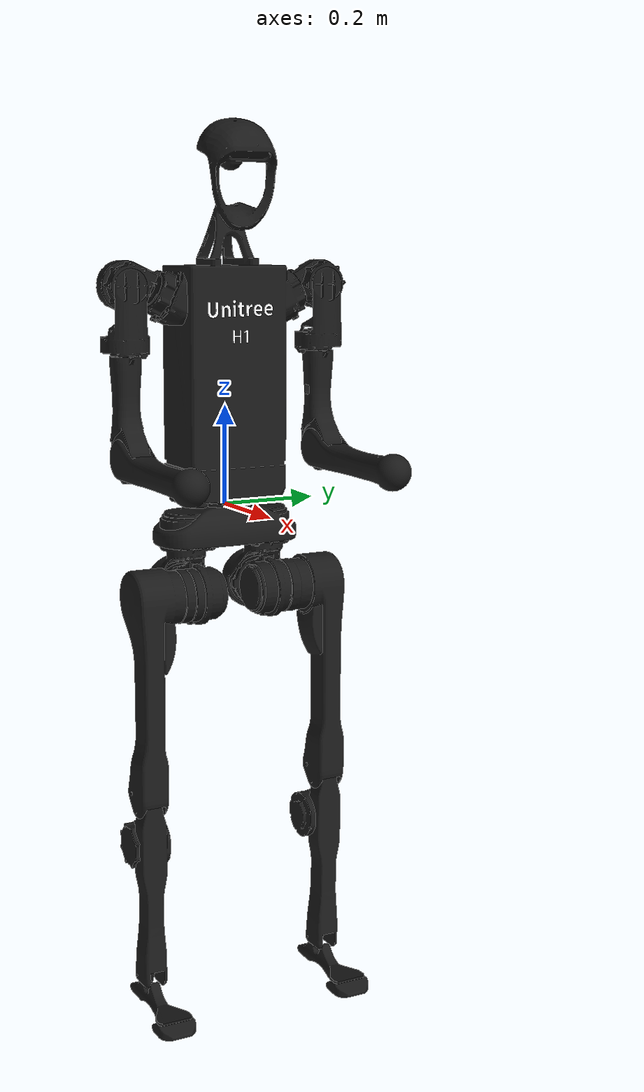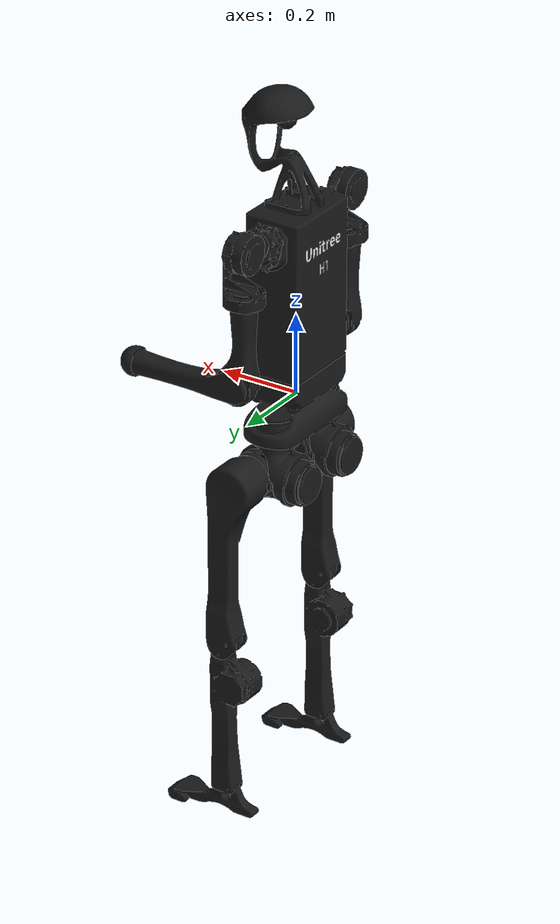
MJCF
<?xml version="1.0" ?>
<mujoco model="h1">
	<compiler meshdir="h1/meshes" texturedir="h1/textures" angle="radian" autolimits="true" balanceinertia="true" boundmass="0.000001" boundinertia="0.000001"/>
	<default>
		<default class="visual">
			<geom contype="0" conaffinity="0"/>
		</default>
		<default class="collision">
			<geom rgba="1.0 0.0 0.0 0.0"/>
		</default>
	</default>
	<asset>
		<mesh name="pelvis" file="stl/pelvis.stl" scale="1.0 1.0 1.0"/>
		<mesh name="left_hip_yaw_link" file="stl/left_hip_yaw_link.stl" scale="1.0 1.0 1.0"/>
		<mesh name="left_hip_roll_link" file="stl/left_hip_roll_link.stl" scale="1.0 1.0 1.0"/>
		<mesh name="left_hip_pitch_link" file="stl/left_hip_pitch_link.stl" scale="1.0 1.0 1.0"/>
		<mesh name="left_knee_link" file="stl/left_knee_link.stl" scale="1.0 1.0 1.0"/>
		<mesh name="left_ankle_link" file="stl/left_ankle_link.stl" scale="1.0 1.0 1.0"/>
		<mesh name="right_hip_yaw_link" file="stl/right_hip_yaw_link.stl" scale="1.0 1.0 1.0"/>
		<mesh name="right_hip_roll_link" file="stl/right_hip_roll_link.stl" scale="1.0 1.0 1.0"/>
		<mesh name="right_hip_pitch_link" file="stl/right_hip_pitch_link.stl" scale="1.0 1.0 1.0"/>
		<mesh name="right_knee_link" file="stl/right_knee_link.stl" scale="1.0 1.0 1.0"/>
		<mesh name="right_ankle_link" file="stl/right_ankle_link.stl" scale="1.0 1.0 1.0"/>
		<mesh name="torso_link" file="stl/torso_link.stl" scale="1.0 1.0 1.0"/>
		<mesh name="logo_link" file="stl/logo_link.stl" scale="1.0 1.0 1.0"/>
		<mesh name="left_shoulder_pitch_link" file="stl/left_shoulder_pitch_link.stl" scale="1.0 1.0 1.0"/>
		<mesh name="left_shoulder_roll_link" file="stl/left_shoulder_roll_link.stl" scale="1.0 1.0 1.0"/>
		<mesh name="left_shoulder_yaw_link" file="stl/left_shoulder_yaw_link.stl" scale="1.0 1.0 1.0"/>
		<mesh name="left_elbow_link" file="stl/left_elbow_link.stl" scale="1.0 1.0 1.0"/>
		<mesh name="right_shoulder_pitch_link" file="stl/right_shoulder_pitch_link.stl" scale="1.0 1.0 1.0"/>
		<mesh name="right_shoulder_roll_link" file="stl/right_shoulder_roll_link.stl" scale="1.0 1.0 1.0"/>
		<mesh name="right_shoulder_yaw_link" file="stl/right_shoulder_yaw_link.stl" scale="1.0 1.0 1.0"/>
		<mesh name="right_elbow_link" file="stl/right_elbow_link.stl" scale="1.0 1.0 1.0"/>
		<material name="black" rgba="0.10000000149011612 0.10000000149011612 0.10000000149011612 1.0" emission="0.0" specular="0.5"/>
		<material name="white" rgba="1.0 1.0 1.0 1.0" emission="0.0" specular="0.5"/>
	</asset>
	<worldbody>
		<body name="h1" pos="0.0 0.0 0.0" quat="1.0 0.0 0.0 0.0">
			<body name="pelvis" pos="0.0 0.0 0.0" quat="1.0 0.0 0.0 0.0">
				<geom name="Geom_0" type="mesh" pos="1.4959405234549195e-06 2.051345518339076e-06 -0.04126008599996567" quat="0.5000481009483337 0.5000556111335754 -0.49994853138923645 0.499947726726532" mesh="pelvis" material="black" class="visual"/>
				<geom name="Geom_1" type="mesh" pos="1.4959405234549195e-06 2.051345518339076e-06 -0.04126008599996567" quat="0.5000481009483337 0.5000556111335754 -0.49994853138923645 0.499947726726532" mesh="pelvis" class="collision"/>
				<body name="right_hip_yaw_link" pos="0.0 -0.08749999850988388 -0.17419999837875366" quat="1.0 0.0 0.0 0.0">
					<inertial mass="2.24399995803833" pos="-0.049229998141527176 -9.999999747378752e-05 0.007199999876320362" quat="0.6416670083999634 0.2332870066165924 0.2191929966211319 0.6969900131225586" diaginertia="0.0030449400655925274 0.002968850079923868 0.0018920099828392267"/>
					<geom name="Geom_12" type="mesh" pos="-0.03807106986641884 3.4278398288734024e-06 0.033565454185009" quat="0.9465280175209045 6.459824362536892e-05 0.322621613740921 6.646179099334404e-05" mesh="right_hip_yaw_link" material="black" class="visual"/>
					<geom name="Geom_13" type="cylinder" pos="-0.06700000166893005 0.0 0.0" quat="0.7071232795715332 0.0 0.7070902585983276 0.0" size="0.05999999865889549 0.03500000014901161 0.0" class="collision"/>
					<joint name="right_hip_yaw" type="hinge" pos="0.0 0.0 0.0" range="-0.4300000071525574 0.4300000071525574" axis="0.0 0.0 1.0"/>
					<body name="right_hip_roll_link" pos="0.03946800157427788 0.0 0.0" quat="1.0 0.0 0.0 0.0">
						<inertial mass="2.2320001125335693" pos="-0.005799999926239252 0.0031900000758469105 -9.000000136438757e-05" quat="-0.0438242144882679 0.7072102427482605 0.07290752232074738 0.7018672227859497" diaginertia="0.002432639943435788 0.0022532499860972166 0.0020549199543893337"/>
						<geom name="Geom_14" type="mesh" pos="-0.020227110013365746 0.00920272059738636 1.7128593299275963e-06" quat="0.4344494640827179 0.434529185295105 0.5577123165130615 0.5580277442932129" mesh="right_hip_roll_link" material="black" class="visual"/>
						<geom name="Geom_15" type="mesh" pos="-0.020227110013365746 0.00920272059738636 1.7128593299275963e-06" quat="0.4344494640827179 0.434529185295105 0.5577123165130615 0.5580277442932129" mesh="right_hip_roll_link" class="collision"/>
						<joint name="right_hip_roll" type="hinge" pos="0.0 0.0 0.0" range="-0.4300000071525574 0.4300000071525574" axis="1.0 0.0 0.0"/>
						<body name="right_hip_pitch_link" pos="0.0 -0.11535999923944473 0.0" quat="1.0 0.0 0.0 0.0">
							<inertial mass="4.1519999504089355" pos="0.007459999993443489 0.02346000075340271 -0.0819299966096878" quat="0.9798283576965332 -0.05135221779346466 -0.01698540523648262 0.1923820674419403" diaginertia="0.08295030146837234 0.08214569836854935 0.005109089892357588"/>
							<geom name="Geom_16" type="mesh" pos="0.012151695787906647 0.01963897980749607 -0.13054850697517395" quat="0.9817856550216675 -0.052278731018304825 -0.020554043352603912 0.18149760365486145" mesh="right_hip_pitch_link" material="black" class="visual"/>
							<geom name="Geom_17" type="mesh" pos="0.012151695787906647 0.01963897980749607 -0.13054850697517395" quat="0.9817856550216675 -0.052278731018304825 -0.020554043352603912 0.18149760365486145" mesh="right_hip_pitch_link" class="collision"/>
							<joint name="right_hip_pitch" type="hinge" pos="0.0 0.0 0.0" range="-1.5700000524520874 1.5700000524520874" axis="0.0 1.0 0.0"/>
							<body name="right_knee_link" pos="0.0 0.0 -0.4000000059604645" quat="1.0 0.0 0.0 0.0">
								<inertial mass="1.7209999561309814" pos="-0.0013599999947473407 0.005119999870657921 -0.13840000331401825" quat="0.7778522372245789 -0.04162771254777908 -0.03422700986266136 0.6261321902275085" diaginertia="0.012523699551820755 0.012310399673879147 0.0019428000086918473"/>
								<geom name="Geom_18" type="mesh" pos="0.0076714251190423965 0.0017608820926398039 -0.16004091501235962" quat="0.7392074465751648 -0.019502710551023483 -0.0162811279296875 0.6729984879493713" mesh="right_knee_link" material="black" class="visual"/>
								<geom name="Geom_19" type="mesh" pos="0.0076714251190423965 0.0017608820926398039 -0.16004091501235962" quat="0.7392074465751648 -0.019502710551023483 -0.0162811279296875 0.6729984879493713" mesh="right_knee_link" class="collision"/>
								<joint name="right_knee" type="hinge" pos="0.0 0.0 0.0" range="-0.25999999046325684 2.049999952316284" axis="0.0 1.0 0.0"/>
								<body name="right_ankle_link" pos="0.0 0.0 -0.4000000059604645" quat="1.0 0.0 0.0 0.0">
									<inertial mass="0.44600000977516174" pos="0.06722000241279602 -0.0001500000071246177 -0.04496999830007553" quat="0.4329717755317688 0.5657817125320435 0.5031967163085938 0.48910075426101685" diaginertia="0.0022084799129515886 0.002189609920606017 0.00021420199482236058"/>
									<geom name="Geom_20" type="mesh" pos="0.07149466872215271 3.012107754329918e-07 -0.047084417194128036" quat="-3.448139614192769e-05 0.7501697540283203 -3.771793490159325e-05 0.6612452864646912" mesh="right_ankle_link" material="black" class="visual"/>
									<geom name="Geom_21" type="mesh" pos="0.07149466872215271 3.012107754329918e-07 -0.047084417194128036" quat="-3.448139614192769e-05 0.7501697540283203 -3.771793490159325e-05 0.6612452864646912" mesh="right_ankle_link" class="collision"/>
									<joint name="right_ankle" type="hinge" pos="0.0 0.0 0.0" range="-0.8700000047683716 0.5199999809265137" axis="0.0 1.0 0.0"/>
								</body>
							</body>
						</body>
					</body>
				</body>
				<body name="torso_link" pos="0.0 0.0 0.0" quat="1.0 0.0 0.0 0.0">
					<inertial mass="17.788999557495117" pos="0.0004889999981969595 0.0027970001101493835 0.20484000444412231" quat="0.9999890923500061 -0.0013080800417810678 -0.002822890179231763 -0.0034910503309220076" diaginertia="0.48731499910354614 0.4096280038356781 0.12783700227737427"/>
					<geom name="Geom_22" type="mesh" pos="0.015564000234007835 2.529602170397993e-06 0.38950976729393005" quat="0.9991444945335388 9.059405670086562e-08 0.04135465249419212 0.00018027501937467605" mesh="torso_link" material="black" class="visual"/>
					<geom name="Geom_23" type="mesh" pos="0.015564000234007835 2.529602170397993e-06 0.38950976729393005" quat="0.9991444945335388 9.059405670086562e-08 0.04135465249419212 0.00018027501937467605" mesh="torso_link" class="collision"/>
					<geom name="Geom_24" type="mesh" pos="-1.66760273714317e-05 0.0012330973986536264 0.3837130665779114" quat="0.024031583219766617 0.7058780193328857 -0.03540341183543205 0.7070398330688477" mesh="logo_link" material="white" class="visual"/>
					<joint name="torso" type="hinge" pos="0.0 0.0 0.0" range="-2.3499999046325684 2.3499999046325684" axis="0.0 0.0 1.0"/>
					<body name="right_shoulder_pitch_link" pos="0.005499999970197678 -0.155349999666214 0.4299899935722351" quat="0.9762963652610779 -0.21643806993961334 0.0 0.0">
						<inertial mass="1.0329999923706055" pos="0.005044999998062849 -0.05365699902176857 -0.01571499928832054" quat="0.5792360305786133 0.8148580193519592 0.009364880621433258 0.020107200369238853" diaginertia="0.0012993599520996213 0.0009871129877865314 0.0008581979782320559"/>
						<geom name="Geom_33" type="mesh" pos="-0.0056705777533352375 -0.049511924386024475 -0.01447086501866579" quat="0.5847590565681458 0.8103508949279785 -0.025327419862151146 -0.02732761763036251" mesh="right_shoulder_pitch_link" material="black" class="visual"/>
						<geom name="Geom_34" type="mesh" pos="-0.0056705777533352375 -0.049511924386024475 -0.01447086501866579" quat="0.5847590565681458 0.8103508949279785 -0.025327419862151146 -0.02732761763036251" mesh="right_shoulder_pitch_link" class="collision"/>
						<joint name="right_shoulder_pitch" type="hinge" pos="0.0 0.0 0.0" range="-2.869999885559082 2.869999885559082" axis="0.0 1.0 0.0"/>
						<body name="right_shoulder_roll_link" pos="-0.005499999970197678 -0.05649999901652336 -0.016499999910593033" quat="0.9762963652610779 0.21643806993961334 0.0 0.0">
							<inertial mass="0.7929999828338623" pos="0.000678999989759177 -0.0011500000255182385 -0.0940760001540184" quat="0.6763839721679688 0.07666559517383575 0.009171789512038231 0.7324909567832947" diaginertia="0.0017038800287991762 0.0015825600130483508 0.0010033600265160203"/>
							<geom name="Geom_35" type="mesh" pos="0.013244586065411568 0.0012510847300291061 -0.08504389971494675" quat="0.9747488498687744 0.0188274048268795 0.21949194371700287 -0.0365171916782856" mesh="right_shoulder_roll_link" material="black" class="visual"/>
							<geom name="Geom_36" type="mesh" pos="0.013244586065411568 0.0012510847300291061 -0.08504389971494675" quat="0.9747488498687744 0.0188274048268795 0.21949194371700287 -0.0365171916782856" mesh="right_shoulder_roll_link" class="collision"/>
							<joint name="right_shoulder_roll" type="hinge" pos="0.0 0.0 0.0" range="-3.109999895095825 0.3400000035762787" axis="1.0 0.0 0.0"/>
							<body name="right_shoulder_yaw_link" pos="0.0 0.0 -0.13429999351501465" quat="1.0 0.0 0.0 0.0">
								<inertial mass="0.8389999866485596" pos="0.013650000095367432 -0.002767000114545226 -0.16266000270843506" quat="0.708797812461853 -0.047336187213659286 -0.033122893422842026 0.7030418515205383" diaginertia="0.004080379847437143 0.003703670110553503 0.0006226869882084429"/>
								<geom name="Geom_37" type="mesh" pos="0.009967150166630745 -0.0004951314185746014 -0.13347332179546356" quat="0.7078272104263306 -0.04702099785208702 -0.04012338072061539 0.7036759257316589" mesh="right_shoulder_yaw_link" material="black" class="visual"/>
								<geom name="Geom_38" type="mesh" pos="0.009967150166630745 -0.0004951314185746014 -0.13347332179546356" quat="0.7078272104263306 -0.04702099785208702 -0.04012338072061539 0.7036759257316589" mesh="right_shoulder_yaw_link" class="collision"/>
								<joint name="right_shoulder_yaw" type="hinge" pos="0.0 0.0 0.0" range="-4.449999809265137 1.2999999523162842" axis="0.0 0.0 1.0"/>
								<body name="right_elbow_link" pos="0.01850000023841858 0.0 -0.1979999989271164" quat="1.0 0.0 0.0 0.0">
									<inertial mass="0.6690000295639038" pos="0.15907999873161316 0.00014400000509340316 -0.015776000916957855" quat="-0.07652318477630615 0.720326840877533 -0.08531158417463303 0.6841018795967102" diaginertia="0.00601828983053565 0.006005790084600449 0.0004083050007466227"/>
									<geom name="Geom_39" type="mesh" pos="0.16968615353107452 -6.167552783153951e-05 -0.01509109791368246" quat="0.011433186940848827 0.7238512635231018 0.010761781595647335 0.6897773742675781" mesh="right_elbow_link" material="black" class="visual"/>
									<geom name="Geom_40" type="mesh" pos="0.16968615353107452 -6.167552783153951e-05 -0.01509109791368246" quat="0.011433186940848827 0.7238512635231018 0.010761781595647335 0.6897773742675781" mesh="right_elbow_link" class="collision"/>
									<joint name="right_elbow" type="hinge" pos="0.0 0.0 0.0" range="-1.25 2.609999895095825" axis="0.0 1.0 0.0"/>
								</body>
							</body>
						</body>
					</body>
					<body name="left_shoulder_pitch_link" pos="0.005499999970197678 0.155349999666214 0.4299899935722351" quat="0.9762963652610779 0.21643806993961334 0.0 0.0">
						<inertial mass="1.0329999923706055" pos="0.005044999998062849 0.05365699902176857 -0.01571499928832054" quat="0.8148580193519592 0.5792360305786133 -0.020107200369238853 -0.009364880621433258" diaginertia="0.0012993599520996213 0.0009871129877865314 0.0008581979782320559"/>
						<geom name="Geom_25" type="mesh" pos="-0.005670230370014906 0.04951075464487076 -0.014470953494310379" quat="0.8103417158126831 0.5847719311714172 0.02733016200363636 0.02532060258090496" mesh="left_shoulder_pitch_link" material="black" class="visual"/>
						<geom name="Geom_26" type="mesh" pos="-0.005670230370014906 0.04951075464487076 -0.014470953494310379" quat="0.8103417158126831 0.5847719311714172 0.02733016200363636 0.02532060258090496" mesh="left_shoulder_pitch_link" class="collision"/>
						<joint name="left_shoulder_pitch" type="hinge" pos="0.0 0.0 0.0" range="-2.869999885559082 2.869999885559082" axis="0.0 1.0 0.0"/>
						<body name="left_shoulder_roll_link" pos="-0.005499999970197678 0.05649999901652336 -0.016499999910593033" quat="0.9762963652610779 -0.21643806993961334 0.0 0.0">
							<inertial mass="0.7929999828338623" pos="0.000678999989759177 0.0011500000255182385 -0.0940760001540184" quat="0.7324909567832947 0.009171789512038231 0.07666559517383575 0.6763839721679688" diaginertia="0.0017038800287991762 0.0015825600130483508 0.0010033600265160203"/>
							<geom name="Geom_27" type="mesh" pos="0.013247874565422535 -0.001250272965990007 -0.08504226803779602" quat="0.9747517704963684 -0.018931468948721886 0.2195109724998474 0.036269791424274445" mesh="left_shoulder_roll_link" material="black" class="visual"/>
							<geom name="Geom_28" type="mesh" pos="0.013247874565422535 -0.001250272965990007 -0.08504226803779602" quat="0.9747517704963684 -0.018931468948721886 0.2195109724998474 0.036269791424274445" mesh="left_shoulder_roll_link" class="collision"/>
							<joint name="left_shoulder_roll" type="hinge" pos="0.0 0.0 0.0" range="-0.3400000035762787 3.109999895095825" axis="1.0 0.0 0.0"/>
							<body name="left_shoulder_yaw_link" pos="0.0 0.0 -0.13429999351501465" quat="1.0 0.0 0.0 0.0">
								<inertial mass="0.8389999866485596" pos="0.013650000095367432 0.002767000114545226 -0.16266000270843506" quat="0.7030418515205383 -0.033122893422842026 -0.047336187213659286 0.708797812461853" diaginertia="0.004080379847437143 0.003703670110553503 0.0006226869882084429"/>
								<geom name="Geom_29" type="mesh" pos="0.009968684054911137 0.0004950409638695419 -0.13347001373767853" quat="0.7036800980567932 -0.04013960063457489 -0.047030624002218246 0.7078214883804321" mesh="left_shoulder_yaw_link" material="black" class="visual"/>
								<geom name="Geom_30" type="mesh" pos="0.009968684054911137 0.0004950409638695419 -0.13347001373767853" quat="0.7036800980567932 -0.04013960063457489 -0.047030624002218246 0.7078214883804321" mesh="left_shoulder_yaw_link" class="collision"/>
								<joint name="left_shoulder_yaw" type="hinge" pos="0.0 0.0 0.0" range="-1.2999999523162842 4.449999809265137" axis="0.0 0.0 1.0"/>
								<body name="left_elbow_link" pos="0.01850000023841858 0.0 -0.1979999989271164" quat="1.0 0.0 0.0 0.0">
									<inertial mass="0.6690000295639038" pos="0.15907999873161316 -0.00014400000509340316 -0.015776000916957855" quat="0.07652318477630615 0.720326840877533 0.08531158417463303 0.6841018795967102" diaginertia="0.00601828983053565 0.006005790084600449 0.0004083050007466227"/>
									<geom name="Geom_31" type="mesh" pos="0.16968630254268646 6.118328747106716e-05 -0.015091080218553543" quat="-0.011398239992558956 0.7238525152206421 -0.010725995525717735 0.6897771954536438" mesh="left_elbow_link" material="black" class="visual"/>
									<geom name="Geom_32" type="mesh" pos="0.16968630254268646 6.118328747106716e-05 -0.015091080218553543" quat="-0.011398239992558956 0.7238525152206421 -0.010725995525717735 0.6897771954536438" mesh="left_elbow_link" class="collision"/>
									<joint name="left_elbow" type="hinge" pos="0.0 0.0 0.0" range="-1.25 2.609999895095825" axis="0.0 1.0 0.0"/>
								</body>
							</body>
						</body>
					</body>
				</body>
				<body name="left_hip_yaw_link" pos="0.0 0.08749999850988388 -0.17419999837875366" quat="1.0 0.0 0.0 0.0">
					<inertial mass="2.24399995803833" pos="-0.049229998141527176 9.999999747378752e-05 0.007199999876320362" quat="0.6969900131225586 0.2191929966211319 0.2332870066165924 0.6416670083999634" diaginertia="0.0030449400655925274 0.002968850079923868 0.0018920099828392267"/>
					<geom name="Geom_2" type="mesh" pos="-0.03807055205106735 -3.327455033286242e-06 0.03356019780039787" quat="0.9465417861938477 -4.02824989578221e-05 0.3225811719894409 5.5876375881780405e-06" mesh="left_hip_yaw_link" material="black" class="visual"/>
					<geom name="Geom_3" type="cylinder" pos="-0.06700000166893005 0.0 0.0" quat="0.7071232795715332 0.0 0.7070902585983276 0.0" size="0.05999999865889549 0.03500000014901161 0.0" class="collision"/>
					<joint name="left_hip_yaw" type="hinge" pos="0.0 0.0 0.0" range="-0.4300000071525574 0.4300000071525574" axis="0.0 0.0 1.0"/>
					<body name="left_hip_roll_link" pos="0.03946800157427788 0.0 0.0" quat="1.0 0.0 0.0 0.0">
						<inertial mass="2.2320001125335693" pos="-0.005799999926239252 -0.0031900000758469105 -9.000000136438757e-05" quat="0.0438242144882679 0.7072102427482605 -0.07290752232074738 0.7018672227859497" diaginertia="0.002432639943435788 0.0022532499860972166 0.0020549199543893337"/>
						<geom name="Geom_4" type="mesh" pos="-0.020227232947945595 -0.009204677306115627 3.911885869456455e-06" quat="0.5579675436019897 0.5577179193496704 0.43452849984169006 0.43452030420303345" mesh="left_hip_roll_link" material="black" class="visual"/>
						<geom name="Geom_5" type="mesh" pos="-0.020227232947945595 -0.009204677306115627 3.911885869456455e-06" quat="0.5579675436019897 0.5577179193496704 0.43452849984169006 0.43452030420303345" mesh="left_hip_roll_link" class="collision"/>
						<joint name="left_hip_roll" type="hinge" pos="0.0 0.0 0.0" range="-0.4300000071525574 0.4300000071525574" axis="1.0 0.0 0.0"/>
						<body name="left_hip_pitch_link" pos="0.0 0.11535999923944473 0.0" quat="1.0 0.0 0.0 0.0">
							<inertial mass="4.1519999504089355" pos="0.007459999993443489 -0.02346000075340271 -0.0819299966096878" quat="0.9798283576965332 0.05135221779346466 -0.01698540523648262 -0.1923820674419403" diaginertia="0.08295030146837234 0.08214569836854935 0.005109089892357588"/>
							<geom name="Geom_6" type="mesh" pos="0.012151024304330349 -0.019641246646642685 -0.130537211894989" quat="0.9818058609962463 0.05227810889482498 -0.02056010253727436 -0.18138784170150757" mesh="left_hip_pitch_link" material="black" class="visual"/>
							<geom name="Geom_7" type="mesh" pos="0.012151024304330349 -0.019641246646642685 -0.130537211894989" quat="0.9818058609962463 0.05227810889482498 -0.02056010253727436 -0.18138784170150757" mesh="left_hip_pitch_link" class="collision"/>
							<joint name="left_hip_pitch" type="hinge" pos="0.0 0.0 0.0" range="-1.5700000524520874 1.5700000524520874" axis="0.0 1.0 0.0"/>
							<body name="left_knee_link" pos="0.0 0.0 -0.4000000059604645" quat="1.0 0.0 0.0 0.0">
								<inertial mass="1.7209999561309814" pos="-0.0013599999947473407 -0.005119999870657921 -0.13840000331401825" quat="0.6261321902275085 -0.03422700986266136 -0.04162771254777908 0.7778522372245789" diaginertia="0.012523699551820755 0.012310399673879147 0.0019428000086918473"/>
								<geom name="Geom_8" type="mesh" pos="0.007670897524803877 -0.0017604113090783358 -0.16003209352493286" quat="0.6729996800422668 -0.01627342775464058 -0.01950850896537304 0.7392063736915588" mesh="left_knee_link" material="black" class="visual"/>
								<geom name="Geom_9" type="mesh" pos="0.007670897524803877 -0.0017604113090783358 -0.16003209352493286" quat="0.6729996800422668 -0.01627342775464058 -0.01950850896537304 0.7392063736915588" mesh="left_knee_link" class="collision"/>
								<joint name="left_knee" type="hinge" pos="0.0 0.0 0.0" range="-0.25999999046325684 2.049999952316284" axis="0.0 1.0 0.0"/>
								<body name="left_ankle_link" pos="0.0 0.0 -0.4000000059604645" quat="1.0 0.0 0.0 0.0">
									<inertial mass="0.44600000977516174" pos="0.06722000241279602 0.0001500000071246177 -0.04496999830007553" quat="0.48910075426101685 0.5031967163085938 0.5657817125320435 0.4329717755317688" diaginertia="0.0022084799129515886 0.002189609920606017 0.00021420199482236058"/>
									<geom name="Geom_10" type="mesh" pos="0.0714942142367363 1.047239379659004e-07 -0.04708452895283699" quat="0.0002447657170705497 0.7501683831214905 0.00026602079742588103 0.6612467169761658" mesh="left_ankle_link" material="black" class="visual"/>
									<geom name="Geom_11" type="mesh" pos="0.0714942142367363 1.047239379659004e-07 -0.04708452895283699" quat="0.0002447657170705497 0.7501683831214905 0.00026602079742588103 0.6612467169761658" mesh="left_ankle_link" class="collision"/>
									<joint name="left_ankle" type="hinge" pos="0.0 0.0 0.0" range="-0.8700000047683716 0.5199999809265137" axis="0.0 1.0 0.0"/>
								</body>
							</body>
						</body>
					</body>
				</body>
			</body>
		</body>
	</worldbody>
	<equality/>
</mujoco>
